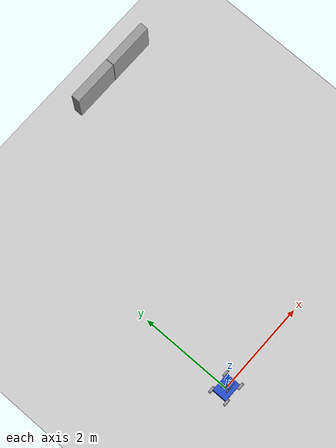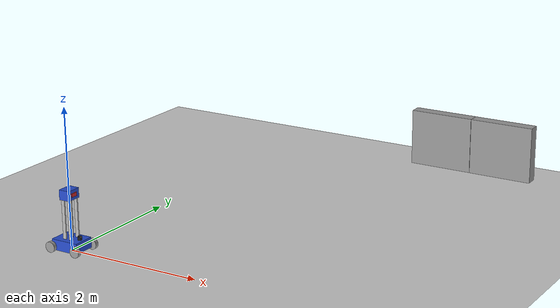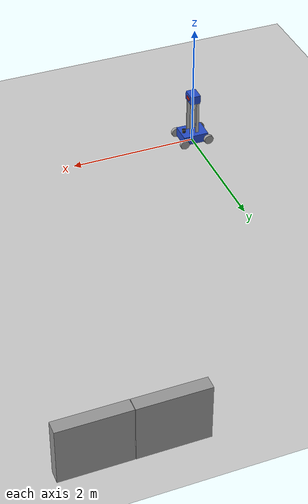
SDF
<sdf version="1.7">
 <world name="default">
  <scene>
   <ambient>0.68 0.68 0.68 1</ambient>
   <sky><sunrise>6</sunrise><clouds><speed>12</speed></clouds></sky>
   <background>0.7 0.7 0.7 1</background>
   <shadows>1</shadows>
  </scene>
  <physics name="default_physics" default="0" type="ode">
   <max_step_size>0.001</max_step_size>
   <real_time_factor>1</real_time_factor>
   <real_time_update_rate>1000</real_time_update_rate>
  </physics>
  <model name="ISCAS_groundplane">
   <static>1</static>
   <link name="link">
    <collision name="collision">
     <geometry><plane><normal>0 0 1</normal><size>12 13</size></plane></geometry>
     <surface><friction><ode><mu>100</mu><mu2>50</mu2></ode></friction></surface>
    </collision>
    <visual name="visual">
     <cast_shadows>0</cast_shadows>
     <geometry><plane><normal>0 0 1</normal><size>12 13</size></plane></geometry>
     <material>
      <script>
       <uri>model://ISCAS_groundplane/materials/scripts</uri>
       <uri>model://ISCAS_groundplane/materials/textures</uri>
       <name>ISCAS_groundplane/Image</name>
      </script>
     </material>
    </visual>
   </link>
  </model>
  <light name="sun" type="directional">
   <pose>0 0 10 0 -0 0</pose>
   <diffuse>0.8 0.8 0.8 1</diffuse>
   <specular>0.2 0.2 0.2 1</specular>
   <attenuation>
    <range>1000</range>
    <constant>0.9</constant>
    <linear>0.01</linear>
    <quadratic>0.001</quadratic>
   </attenuation>
   <direction>-0.5 0.1 -0.9</direction>
   <spot><inner_angle>0</inner_angle><outer_angle>0</outer_angle><falloff>0</falloff></spot>
  </light>
  <gravity>0 0 -9.8</gravity>
  <magnetic_field>6e-06 2.3e-05 -4.2e-05</magnetic_field>
  <atmosphere type="adiabatic"/>
  <spherical_coordinates>
   <surface_model>EARTH_WGS84</surface_model>
   <latitude_deg>0</latitude_deg>
   <longitude_deg>0</longitude_deg>
   <elevation>0</elevation>
   <heading_deg>0</heading_deg>
  </spherical_coordinates>
  <model name="unit_box">
   <pose>3.73807 5.80746 0.433018 -1e-06 -1e-06 -0.002007</pose>
   <link name="link">
    <inertial>
     <mass>1</mass>
     <inertia>
      <ixx>0.166667</ixx>
      <ixy>0</ixy>
      <ixz>0</ixz>
      <iyy>0.166667</iyy>
      <iyz>0</iyz>
      <izz>0.166667</izz>
     </inertia>
    </inertial>
    <collision name="collision"><geometry><box><size>1 0.185442 0.866044</size></box></geometry></collision>
    <visual name="visual">
     <geometry><box><size>1 0.185442 0.866044</size></box></geometry>
     <material>
      <script><name>Gazebo/Grey</name><uri>file://media/materials/scripts/gazebo.material</uri></script>
     </material>
    </visual>
   </link>
  </model>
  <model name="unit_box_clone">
   <pose>2.73193 5.81227 0.433017 -1e-06 -1e-06 -0.002007</pose>
   <link name="link">
    <inertial>
     <mass>1</mass>
     <inertia>
      <ixx>0.166667</ixx>
      <ixy>0</ixy>
      <ixz>0</ixz>
      <iyy>0.166667</iyy>
      <iyz>0</iyz>
      <izz>0.166667</izz>
     </inertia>
    </inertial>
    <collision name="collision"><geometry><box><size>1 0.185442 0.866044</size></box></geometry></collision>
    <visual name="visual">
     <geometry><box><size>1 0.185442 0.866044</size></box></geometry>
     <material>
      <script><name>Gazebo/Grey</name><uri>file://media/materials/scripts/gazebo.material</uri></script>
     </material>
    </visual>
   </link>
  </model>
  <audio><device>default</device></audio>
  <model name="my_robot">
   <link name="base_footprint">
    <inertial>
     <pose>0.003537 -0 0.366585 0 -0 0</pose>
     <mass>41</mass>
     <inertia>
      <ixx>10.4535</ixx>
      <ixy>-3.9264e-19</ixy>
      <ixz>0.0234299</ixz>
      <iyy>10.8757</iyy>
      <iyz>-3.73685e-17</iyz>
      <izz>6.28239</izz>
     </inertia>
    </inertial>
    <collision name="base_footprint_fixed_joint_lump__base_link_collision">
     <pose>0 0 0.105 0 -0 0</pose>
     <geometry><box><size>0.41 0.32 0.15</size></box></geometry>
    </collision>
    <collision name="base_footprint_fixed_joint_lump__left_front_pillar_link_collision_1">
     <pose>0.05 -0.07 0.46 0 -0 0</pose>
     <geometry><box><size>0.05 0.02 0.56</size></box></geometry>
    </collision>
    <collision name="base_footprint_fixed_joint_lump__left_rear_pillar_link_collision_2">
     <pose>-0.05 -0.07 0.46 0 -0 0</pose>
     <geometry><box><size>0.05 0.02 0.56</size></box></geometry>
    </collision>
    <collision name="base_footprint_fixed_joint_lump__lidar_link_collision_3">
     <pose>0.145 0 0.205 0 -0 0</pose>
     <geometry><cylinder><length>0.1</length><radius>0.075</radius></cylinder></geometry>
    </collision>
    <collision name="base_footprint_fixed_joint_lump__right_front_pillar_link_collision_4">
     <pose>0.05 0.07 0.46 0 -0 0</pose>
     <geometry><box><size>0.05 0.02 0.56</size></box></geometry>
    </collision>
    <collision name="base_footprint_fixed_joint_lump__right_rear_pillar_link_collision_5">
     <pose>-0.05 0.07 0.46 0 -0 0</pose>
     <geometry><box><size>0.05 0.02 0.56</size></box></geometry>
    </collision>
    <collision name="base_footprint_fixed_joint_lump__upper_platform_link_collision_6">
     <pose>0 0 0.81 0 -0 0</pose>
     <geometry><box><size>0.16 0.21 0.14</size></box></geometry>
    </collision>
    <visual name="base_footprint_fixed_joint_lump__base_link_visual">
     <pose>0 0 0.105 0 -0 0</pose>
     <geometry><box><size>0.41 0.32 0.15</size></box></geometry>
     <material>
      <script><name>Gazebo/Blue</name><uri>file://media/materials/scripts/gazebo.material</uri></script>
     </material>
    </visual>
    <visual name="base_footprint_fixed_joint_lump__imu_link_visual_1">
     <pose>0 0 0.03 0 -0 0</pose>
     <geometry><box><size>0.1 0.1 0.01</size></box></geometry>
     <material>
      <script><name>Gazebo/Grey</name><uri>file://media/materials/scripts/gazebo.material</uri></script>
     </material>
    </visual>
    <visual name="base_footprint_fixed_joint_lump__left_front_pillar_link_visual_2">
     <pose>0.05 -0.07 0.46 0 -0 0</pose>
     <geometry><box><size>0.05 0.02 0.56</size></box></geometry>
    </visual>
    <visual name="base_footprint_fixed_joint_lump__left_rear_pillar_link_visual_3">
     <pose>-0.05 -0.07 0.46 0 -0 0</pose>
     <geometry><box><size>0.05 0.02 0.56</size></box></geometry>
    </visual>
    <visual name="base_footprint_fixed_joint_lump__lidar_link_visual_4">
     <pose>0.145 0 0.205 0 -0 0</pose>
     <geometry><cylinder><length>0.05</length><radius>0.03</radius></cylinder></geometry>
     <material>
      <script><name>Gazebo/Black</name><uri>file://media/materials/scripts/gazebo.material</uri></script>
     </material>
    </visual>
    <visual name="base_footprint_fixed_joint_lump__right_front_pillar_link_visual_5">
     <pose>0.05 0.07 0.46 0 -0 0</pose>
     <geometry><box><size>0.05 0.02 0.56</size></box></geometry>
    </visual>
    <visual name="base_footprint_fixed_joint_lump__right_rear_pillar_link_visual_6">
     <pose>-0.05 0.07 0.46 0 -0 0</pose>
     <geometry><box><size>0.05 0.02 0.56</size></box></geometry>
    </visual>
    <visual name="base_footprint_fixed_joint_lump__upper_platform_link_visual_7">
     <pose>0 0 0.81 0 -0 0</pose>
     <geometry><box><size>0.16 0.21 0.14</size></box></geometry>
     <material>
      <script><name>Gazebo/Blue</name><uri>file://media/materials/scripts/gazebo.material</uri></script>
     </material>
    </visual>
    <visual name="base_footprint_fixed_joint_lump__camera_link_visual_8">
     <pose>0.085 0 0.81 0 -0 0</pose>
     <geometry><box><size>0.01 0.1 0.05</size></box></geometry>
     <material>
      <script><name>Gazebo/Red</name><uri>file://media/materials/scripts/gazebo.material</uri></script>
     </material>
    </visual>
    <sensor name="imu_sensor" type="imu">
     <always_on>1</always_on>
     <update_rate>10</update_rate>
     <visualize>1</visualize>
     <plugin name="imu" filename="libgazebo_ros_imu_sensor.so">
      <ros><argument>~/out:=imu</argument></ros>
      <bodyName>imu_link</bodyName>
      <updateRateHZ>10.0</updateRateHZ>
      <gaussianNoise>0.0</gaussianNoise>
      <xyzOffset>0 0 0</xyzOffset>
      <rpyOffset>0 0 0</rpyOffset>
      <frameName>imu_link</frameName>
      <initialOrientationAsReference>0</initialOrientationAsReference>
     </plugin>
     <pose>0 0 0.03 0 -0 0</pose>
    </sensor>
    <sensor name="lidar" type="ray">
     <visualize>1</visualize>
     <update_rate>10</update_rate>
     <ray>
      <scan>
       <horizontal>
        <samples>360</samples>
        <resolution>1</resolution>
        <min_angle>-1.57</min_angle>
        <max_angle>1.57</max_angle>
       </horizontal>
       <vertical><samples>1</samples><min_angle>0</min_angle><max_angle>0</max_angle></vertical>
      </scan>
      <range><min>0.15</min><max>7</max><resolution>0.01</resolution></range>
      <noise><type>gaussian</type><mean>0</mean><stddev>0.01</stddev></noise>
     </ray>
     <plugin name="scan" filename="libgazebo_ros_ray_sensor.so">
      <ros><argument>~/out:=/scan</argument></ros>
      <output_type>sensor_msgs/LaserScan</output_type>
      <frame_name>lidar_link</frame_name>
     </plugin>
     <pose>0.145 0 0.205 0 -0 0</pose>
    </sensor>
    <sensor name="camera_sensor" type="camera">
     <visualize>1</visualize>
     <update_rate>30</update_rate>
     <plugin name="camera_controller" filename="libgazebo_ros_camera.so">
      <frame_name>camera_link</frame_name>
     </plugin>
     <pose>0.085 0 0.81 0 -0 0</pose>
     <camera>
      <horizontal_fov>1.047</horizontal_fov>
      <image><width>320</width><height>240</height></image>
      <clip><near>0.1</near><far>100</far></clip>
     </camera>
    </sensor>
   </link>
   <joint name="fl_wheel_joint" type="revolute">
    <pose relative_to="base_footprint">0.205 0.185 0.075 0 -0 0</pose>
    <parent>base_footprint</parent>
    <child>fl_wheel_link</child>
    <axis>
     <xyz>0 1 0</xyz>
     <limit><lower>-1e+16</lower><upper>1e+16</upper></limit>
     <dynamics><spring_reference>0</spring_reference><spring_stiffness>0</spring_stiffness></dynamics>
    </axis>
   </joint>
   <link name="fl_wheel_link">
    <pose relative_to="fl_wheel_joint">0 0 0 0 -0 0</pose>
    <inertial>
     <pose>0 0 0 1.5708 -0 0</pose>
     <mass>5</mass>
     <inertia>
      <ixx>0.201823</ixx>
      <ixy>0</ixy>
      <ixz>0</ixz>
      <iyy>0.201823</iyy>
      <iyz>0</iyz>
      <izz>0.351562</izz>
     </inertia>
    </inertial>
    <collision name="fl_wheel_link_collision">
     <pose>0 0 0 1.5708 -0 0</pose>
     <geometry><cylinder><length>0.05</length><radius>0.075</radius></cylinder></geometry>
     <surface><friction><ode><mu>0.1</mu><mu2>0.1</mu2></ode></friction></surface>
    </collision>
    <visual name="fl_wheel_link_visual">
     <pose>0 0 0 1.5708 -0 0</pose>
     <geometry><cylinder><length>0.05</length><radius>0.075</radius></cylinder></geometry>
     <material>
      <script><name>Gazebo/Grey</name><uri>file://media/materials/scripts/gazebo.material</uri></script>
     </material>
    </visual>
   </link>
   <joint name="fr_wheel_joint" type="revolute">
    <pose relative_to="base_footprint">0.205 -0.185 0.075 0 -0 0</pose>
    <parent>base_footprint</parent>
    <child>fr_wheel_link</child>
    <axis>
     <xyz>0 1 0</xyz>
     <limit><lower>-1e+16</lower><upper>1e+16</upper></limit>
     <dynamics><spring_reference>0</spring_reference><spring_stiffness>0</spring_stiffness></dynamics>
    </axis>
   </joint>
   <link name="fr_wheel_link">
    <pose relative_to="fr_wheel_joint">0 0 0 0 -0 0</pose>
    <inertial>
     <pose>0 0 0 1.5708 -0 0</pose>
     <mass>5</mass>
     <inertia>
      <ixx>0.201823</ixx>
      <ixy>0</ixy>
      <ixz>0</ixz>
      <iyy>0.201823</iyy>
      <iyz>0</iyz>
      <izz>0.351562</izz>
     </inertia>
    </inertial>
    <collision name="fr_wheel_link_collision">
     <pose>0 0 0 1.5708 -0 0</pose>
     <geometry><cylinder><length>0.05</length><radius>0.075</radius></cylinder></geometry>
     <surface><friction><ode><mu>0.1</mu><mu2>0.1</mu2></ode></friction></surface>
    </collision>
    <visual name="fr_wheel_link_visual">
     <pose>0 0 0 1.5708 -0 0</pose>
     <geometry><cylinder><length>0.05</length><radius>0.075</radius></cylinder></geometry>
     <material>
      <script><name>Gazebo/Grey</name><uri>file://media/materials/scripts/gazebo.material</uri></script>
     </material>
    </visual>
   </link>
   <joint name="rl_wheel_joint" type="revolute">
    <pose relative_to="base_footprint">-0.205 0.185 0.075 0 -0 0</pose>
    <parent>base_footprint</parent>
    <child>rl_wheel_link</child>
    <axis>
     <xyz>0 1 0</xyz>
     <limit><lower>-1e+16</lower><upper>1e+16</upper></limit>
     <dynamics><spring_reference>0</spring_reference><spring_stiffness>0</spring_stiffness></dynamics>
    </axis>
   </joint>
   <link name="rl_wheel_link">
    <pose relative_to="rl_wheel_joint">0 0 0 0 -0 0</pose>
    <inertial>
     <pose>0 0 0 1.5708 -0 0</pose>
     <mass>5</mass>
     <inertia>
      <ixx>0.201823</ixx>
      <ixy>0</ixy>
      <ixz>0</ixz>
      <iyy>0.201823</iyy>
      <iyz>0</iyz>
      <izz>0.351562</izz>
     </inertia>
    </inertial>
    <collision name="rl_wheel_link_collision">
     <pose>0 0 0 1.5708 -0 0</pose>
     <geometry><cylinder><length>0.05</length><radius>0.075</radius></cylinder></geometry>
    </collision>
    <visual name="rl_wheel_link_visual">
     <pose>0 0 0 1.5708 -0 0</pose>
     <geometry><cylinder><length>0.05</length><radius>0.075</radius></cylinder></geometry>
     <material>
      <script><name>Gazebo/Grey</name><uri>file://media/materials/scripts/gazebo.material</uri></script>
     </material>
    </visual>
   </link>
   <joint name="rr_wheel_joint" type="revolute">
    <pose relative_to="base_footprint">-0.205 -0.185 0.075 0 -0 0</pose>
    <parent>base_footprint</parent>
    <child>rr_wheel_link</child>
    <axis>
     <xyz>0 1 0</xyz>
     <limit><lower>-1e+16</lower><upper>1e+16</upper></limit>
     <dynamics><spring_reference>0</spring_reference><spring_stiffness>0</spring_stiffness></dynamics>
    </axis>
   </joint>
   <link name="rr_wheel_link">
    <pose relative_to="rr_wheel_joint">0 0 0 0 -0 0</pose>
    <inertial>
     <pose>0 0 0 1.5708 -0 0</pose>
     <mass>5</mass>
     <inertia>
      <ixx>0.201823</ixx>
      <ixy>0</ixy>
      <ixz>0</ixz>
      <iyy>0.201823</iyy>
      <iyz>0</iyz>
      <izz>0.351562</izz>
     </inertia>
    </inertial>
    <collision name="rr_wheel_link_collision">
     <pose>0 0 0 1.5708 -0 0</pose>
     <geometry><cylinder><length>0.05</length><radius>0.075</radius></cylinder></geometry>
    </collision>
    <visual name="rr_wheel_link_visual">
     <pose>0 0 0 1.5708 -0 0</pose>
     <geometry><cylinder><length>0.05</length><radius>0.075</radius></cylinder></geometry>
     <material>
      <script><name>Gazebo/Grey</name><uri>file://media/materials/scripts/gazebo.material</uri></script>
     </material>
    </visual>
   </link>
   <plugin name="diff_drive_control" filename="libgazebo_ros_diff_drive.so">
    <update_rate>50</update_rate>
    <left_joint>rl_wheel_joint</left_joint>
    <right_joint>rr_wheel_joint</right_joint>
    <wheel_separation>0.45</wheel_separation>
    <wheel_diameter>0.2</wheel_diameter>
    <publish_odom>1</publish_odom>
    <publish_odom_tf>1</publish_odom_tf>
    <publish_wheel_tf>1</publish_wheel_tf>
    <odometry_topic>odom</odometry_topic>
    <odometry_frame>odom</odometry_frame>
    <robot_base_frame>base_footprint</robot_base_frame>
   </plugin>
   <static>0</static>
   <plugin name="driven_wheel" filename="libgazebo_ros_diff_drive.so">
    <update_rate>50</update_rate>
    <left_joint>fl_wheel_joint</left_joint>
    <right_joint>fr_wheel_joint</right_joint>
    <wheel_separation>0.45</wheel_separation>
    <wheel_diameter>0.2</wheel_diameter>
    <publish_odom>0</publish_odom>
    <publish_odom_tf>0</publish_odom_tf>
    <publish_wheel_tf>1</publish_wheel_tf>
    <robot_base_frame>base_footprint</robot_base_frame>
   </plugin>
   <pose>0.000517 0.000488 0 -1e-06 -0 -0.000334</pose>
  </model>
 </world>
</sdf>
